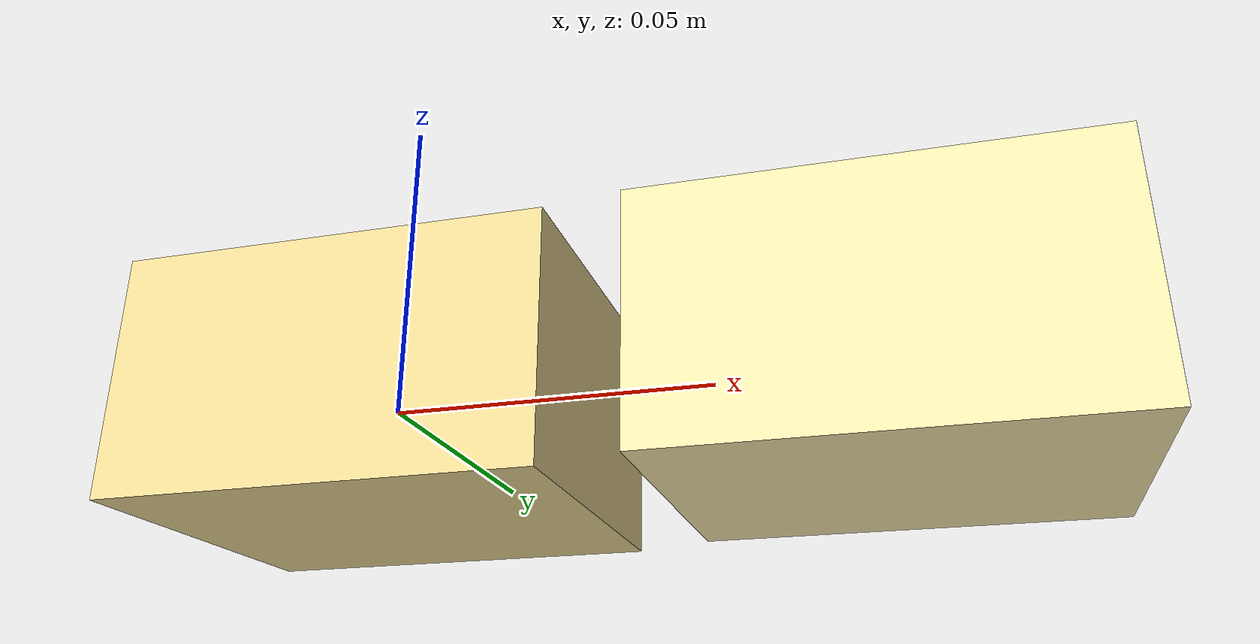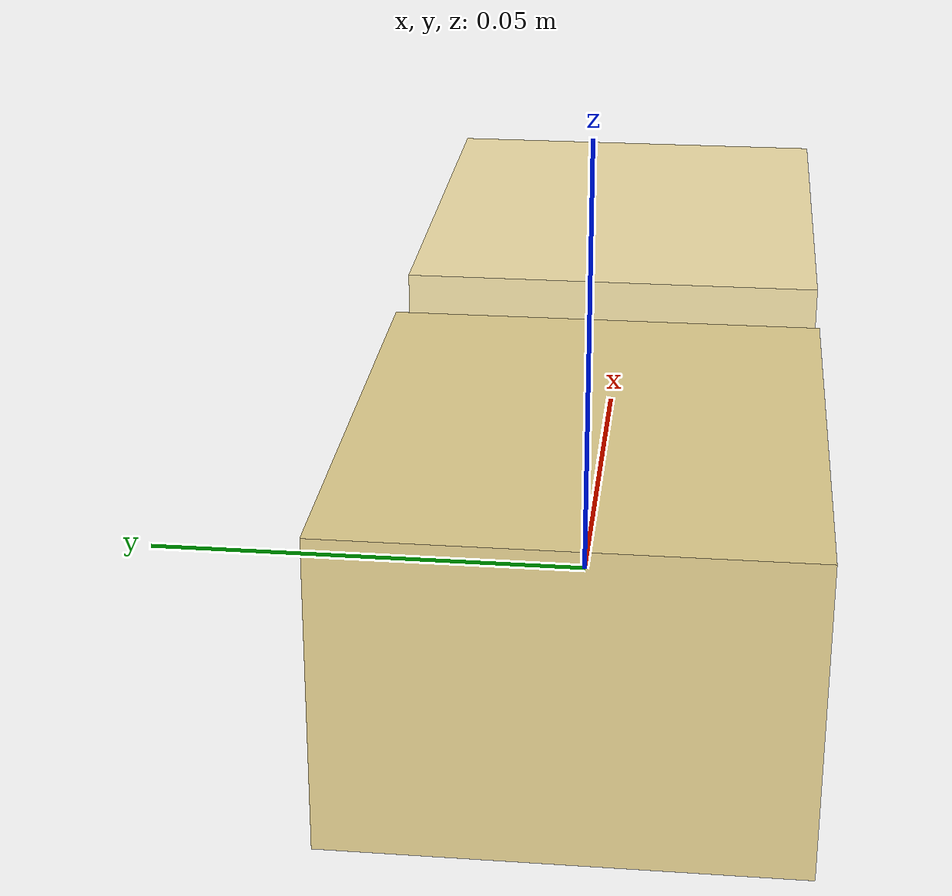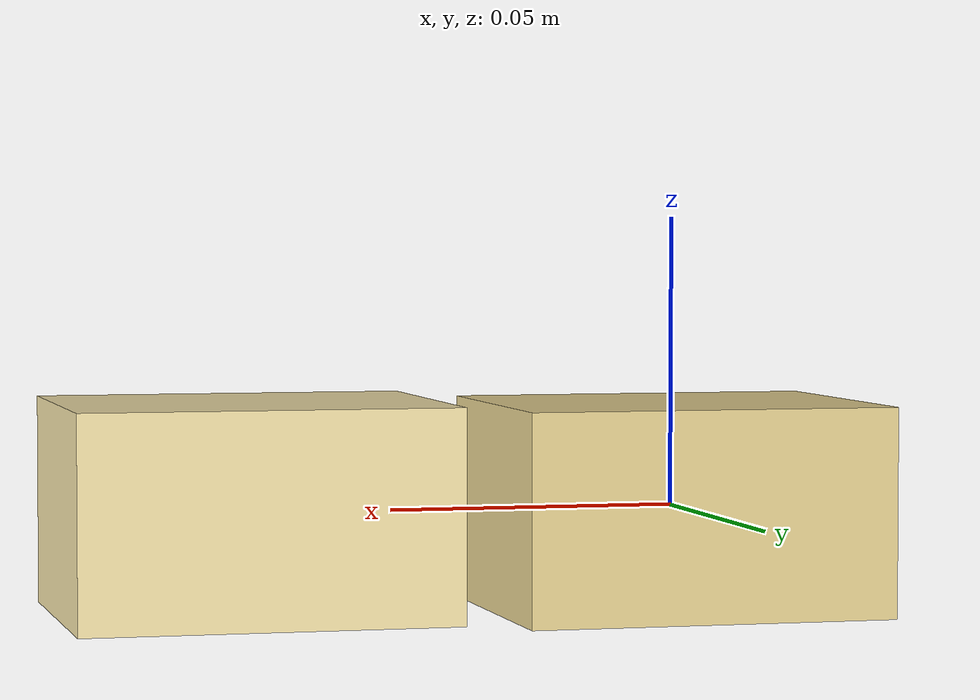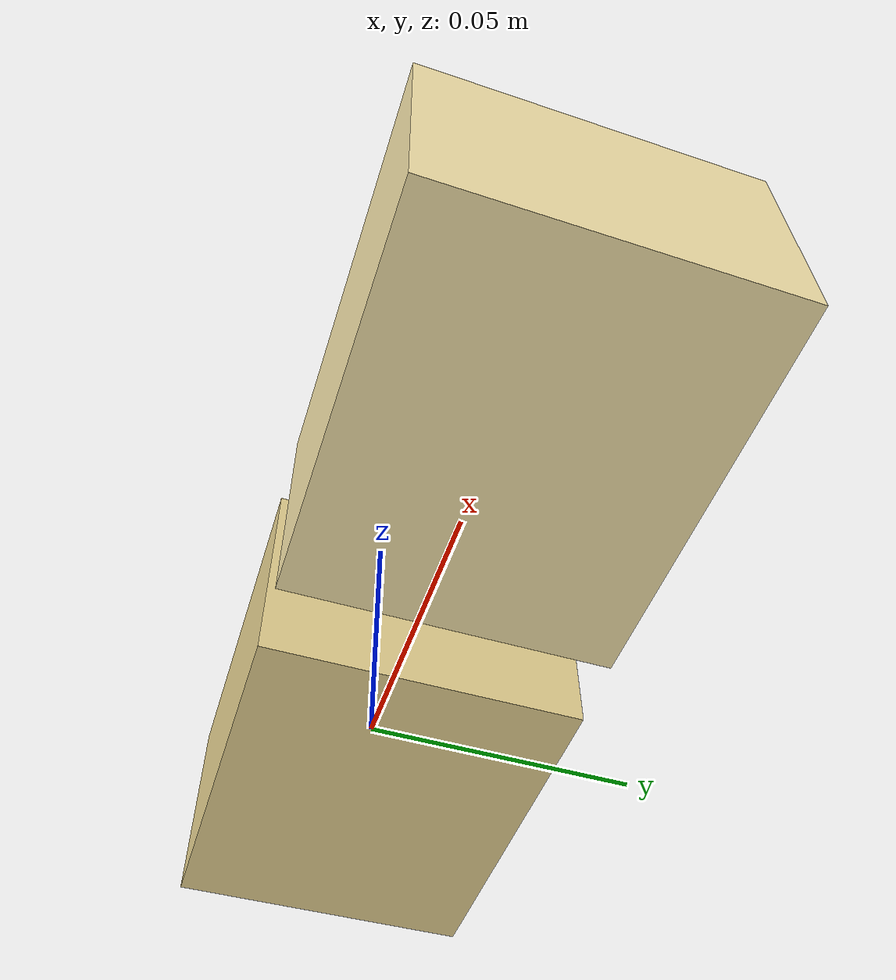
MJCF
<mujoco model="tofu_blocks">
  <worldbody>
    <!-- Two individually addressable tofu blocks. -->
    <body name="tofu_block_a" pos="0 0 0">
      <geom name="tofu_block_a" type="box" size="0.032 0.026 0.018" rgba="0.92 0.84 0.58 1"/>
    </body>
    <body name="tofu_block_b" pos="0.075 0 0.001">
      <geom name="tofu_block_b" type="box" size="0.032 0.026 0.018" rgba="0.98 0.91 0.68 1"/>
    </body>
  </worldbody>
</mujoco>
